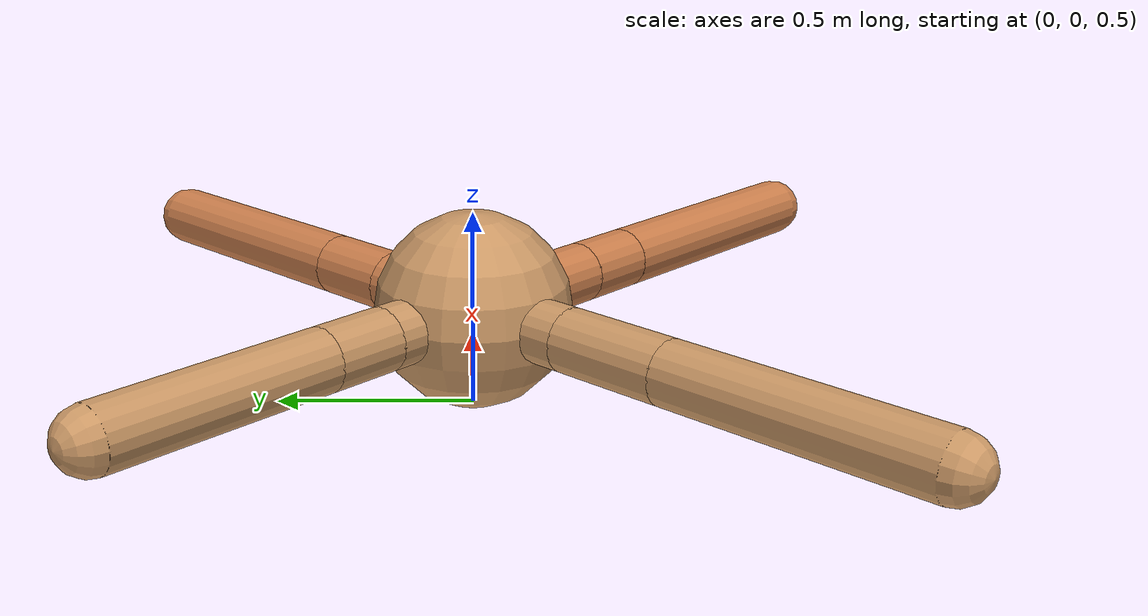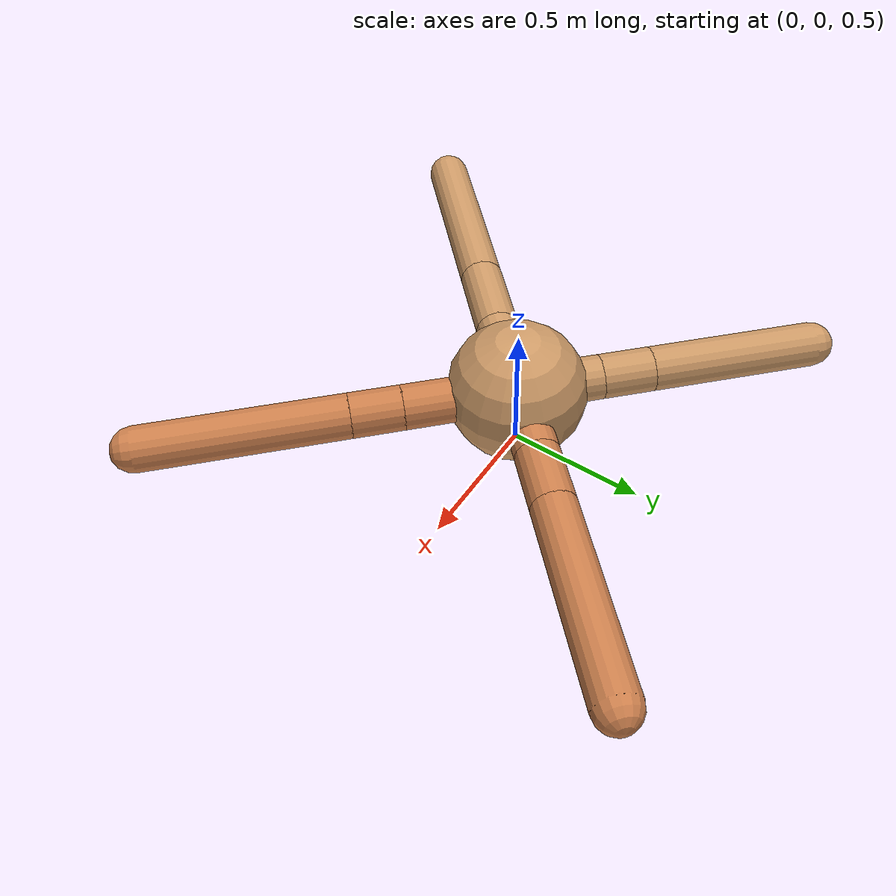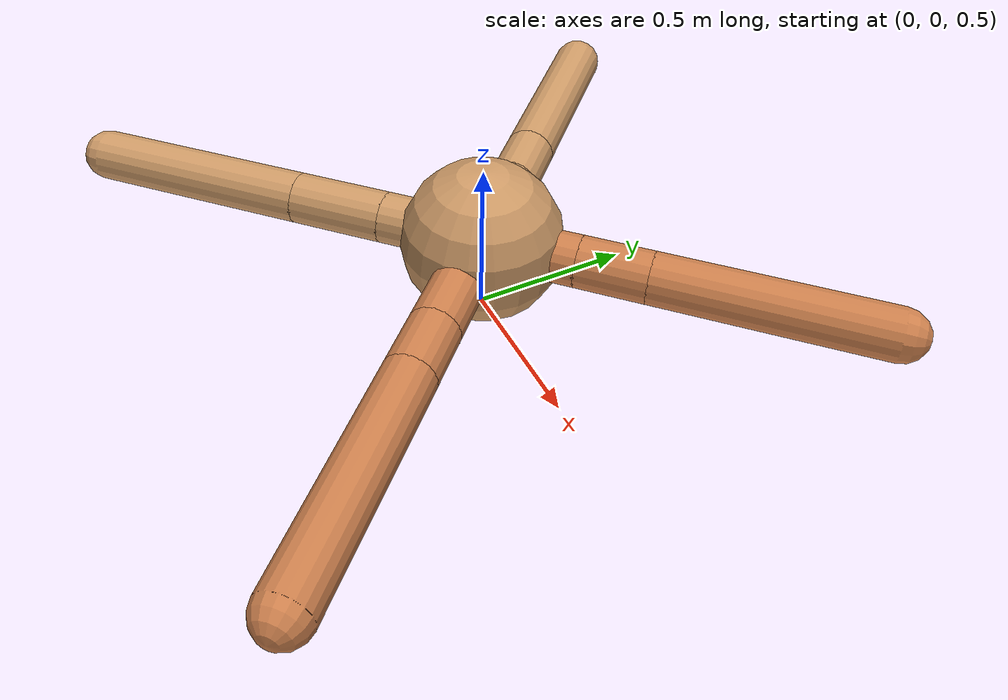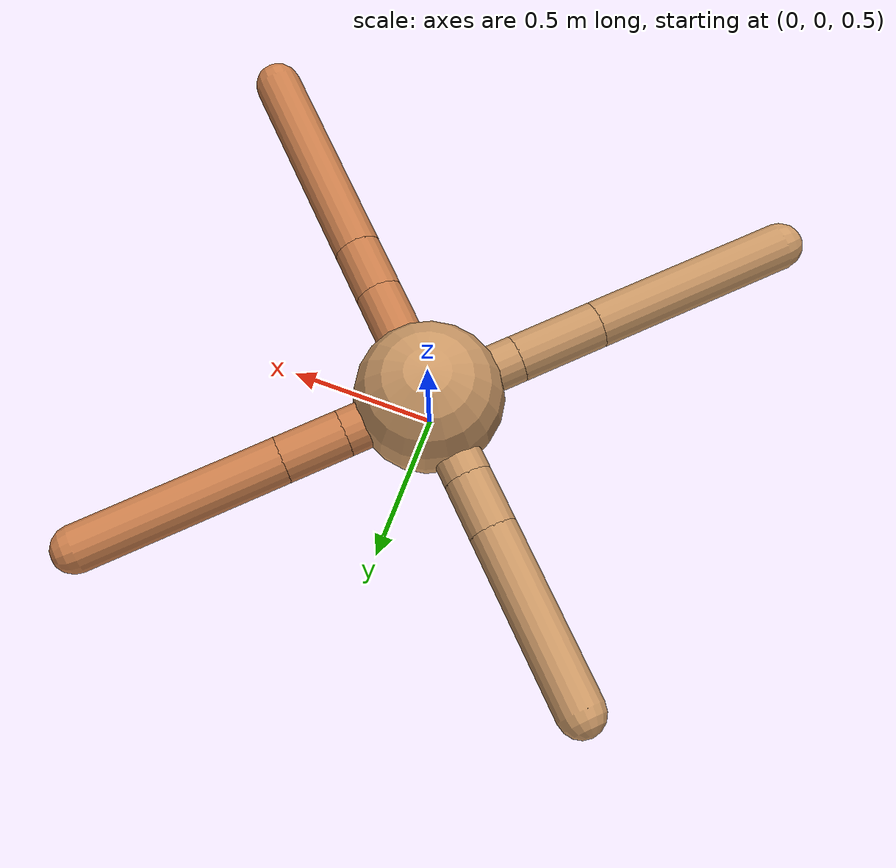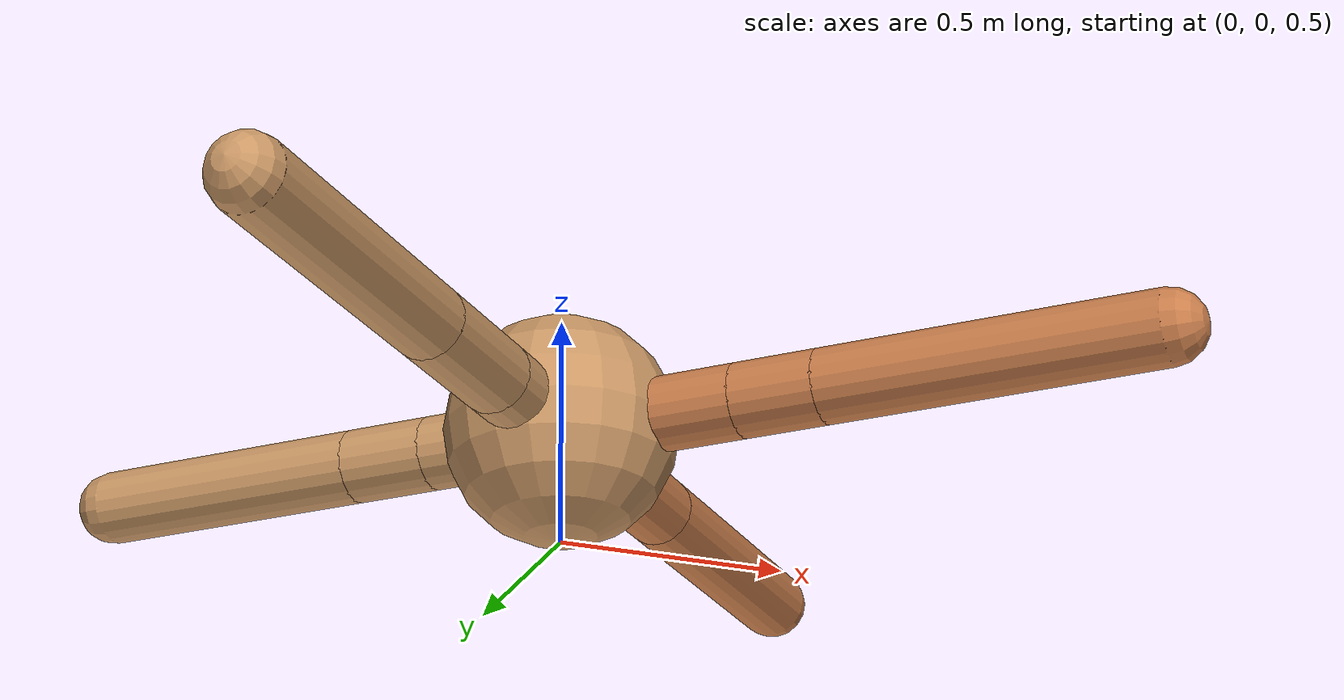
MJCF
<mujoco model="ant">
  <compiler angle="degree" coordinate="local" inertiafromgeom="true" />
  <option integrator="RK4" timestep="0.01" />
  <custom>
    <numeric data="0.0 0.0 0.55 1.0 0.0 0.0 0.0 0.0 1.0 0.0 -1.0 0.0 -1.0 0.0 1.0" name="init_qpos" />
  </custom>
  <default>
    <joint armature="1" damping="1" limited="true" />
    <geom conaffinity="0" condim="3" density="5.0" friction="1.5 0.1 0.1" margin="0.01" rgba="0.8 0.6 0.4 1" />
  </default>
  <worldbody>
    <body name="torso" pos="0 0 0.75">
      <geom name="torso_geom" pos="0 0 0" size="0.25" type="sphere" />

      <body name="front_left_leg" pos="0 0 0">
        <geom fromto="0.0 0.0 0.0 0.21278605223041863 0.21278605223041863 0.0" name="aux_1_geom" size="0.08" type="capsule" rgba=".8 .5 .3 1" />
        <body name="aux_1" pos="0.21278605223041863 0.21278605223041863 0.0">
          <joint axis="0 0 1" name="hip_1" pos="0.0 0.0 0.0" range="-40 40" type="hinge" />
          <geom fromto="0.0 0.0 0.0 0.15225572819193536 0.15225572819193536 0.0" name="left_leg_geom" size="0.08" type="capsule" rgba=".8 .5 .3 1" />
          <body pos="0.15225572819193536 0.15225572819193536 0.0" name="front_left_foot">
            <joint axis="-1 1 0" name="ankle_1" pos="0.0 0.0 0.0" range="30 100" type="hinge" />
            <geom fromto="0.0 0.0 0.0 0.49178599279202295 0.49178599279202295 0.0" name="left_ankle_geom" size="0.08" type="capsule" rgba=".8 .5 .3 1" />
          </body>
        </body>
      </body>
      <body name="front_right_leg" pos="0 0 0">
        <geom fromto="0.0 0.0 0.0 -0.2141854037387633 0.2141854037387633 0.0" name="aux_2_geom" size="0.08" type="capsule" />
        <body name="aux_2" pos="-0.2141854037387633 0.2141854037387633 0.0">
          <joint axis="0 0 1" name="hip_2" pos="0.0 0.0 0.0" range="-40 40" type="hinge" />
          <geom fromto="0.0 0.0 0.0 -0.13235156634330392 0.13235156634330392 0.0" name="right_leg_geom" size="0.08" type="capsule" />
          <body pos="-0.13235156634330392 0.13235156634330392 0.0" name="front_right_foot">
            <joint axis="1 1 0" name="ankle_2" pos="0.0 0.0 0.0" range="-100 -30" type="hinge" />
            <geom fromto="0.0 0.0 0.0 -0.43283604111160817 0.43283604111160817 0.0" name="right_ankle_geom" size="0.08" type="capsule" />
          </body>
        </body>
      </body>
      <body name="left_back_leg" pos="0 0 0">
        <geom fromto="0.0 0.0 0.0 -0.22553362282260295 -0.22553362282260295 0.0" name="aux_3_geom" size="0.08" type="capsule" />
        <body name="aux_3" pos="-0.22553362282260295 -0.22553362282260295 0.0">
          <joint axis="0 0 1" name="hip_3" pos="0.0 0.0 0.0" range="-40 40" type="hinge" />
          <geom fromto="0.0 0.0 0.0 -0.20802010039960722 -0.20802010039960722 0.0" name="back_leg_geom" size="0.08" type="capsule" />
          <body pos="-0.20802010039960722 -0.20802010039960722 0.0" name="left_back_foot">
            <joint axis="-1 1 0" name="ankle_3" pos="0.0 0.0 0.0" range="-100 -30" type="hinge" />
            <geom fromto="0.0 0.0 0.0 -0.4963336185086018 -0.4963336185086018 0.0" name="third_ankle_geom" size="0.08" type="capsule" />
          </body>
        </body>
      </body>
      <body name="right_back_leg" pos="0 0 0">
        <geom fromto="0.0 0.0 0.0 0.28729255198230963 -0.28729255198230963 0.0" name="aux_4_geom" size="0.08" type="capsule" rgba=".8 .5 .3 1" />
        <body name="aux_4" pos="0.28729255198230963 -0.28729255198230963 0.0">
          <joint axis="0 0 1" name="hip_4" pos="0.0 0.0 0.0" range="-40 40" type="hinge" />
          <geom fromto="0.0 0.0 0.0 0.12908862279758865 -0.12908862279758865 0.0" name="rightback_leg_geom" size="0.08" type="capsule" rgba=".8 .5 .3 1" />
          <body pos="0.12908862279758865 -0.12908862279758865 0.0" name="right_back_foot">
            <joint axis="1 1 0" name="ankle_4" pos="0.0 0.0 0.0" range="30 100" type="hinge" />
            <geom fromto="0.0 0.0 0.0 0.5117948155880024 -0.5117948155880024 0.0" name="fourth_ankle_geom" size="0.08" type="capsule" rgba=".8 .5 .3 1" />
          </body>
        </body>
      </body>
    </body>
  </worldbody>
  <actuator>
    <motor ctrllimited="true" ctrlrange="-1.0 1.0" joint="hip_4" gear="150" />
    <motor ctrllimited="true" ctrlrange="-1.0 1.0" joint="ankle_4" gear="150" />
    <motor ctrllimited="true" ctrlrange="-1.0 1.0" joint="hip_1" gear="150" />
    <motor ctrllimited="true" ctrlrange="-1.0 1.0" joint="ankle_1" gear="150" />
    <motor ctrllimited="true" ctrlrange="-1.0 1.0" joint="hip_2" gear="150" />
    <motor ctrllimited="true" ctrlrange="-1.0 1.0" joint="ankle_2" gear="150" />
    <motor ctrllimited="true" ctrlrange="-1.0 1.0" joint="hip_3" gear="150" />
    <motor ctrllimited="true" ctrlrange="-1.0 1.0" joint="ankle_3" gear="150" />
  </actuator>
</mujoco>
